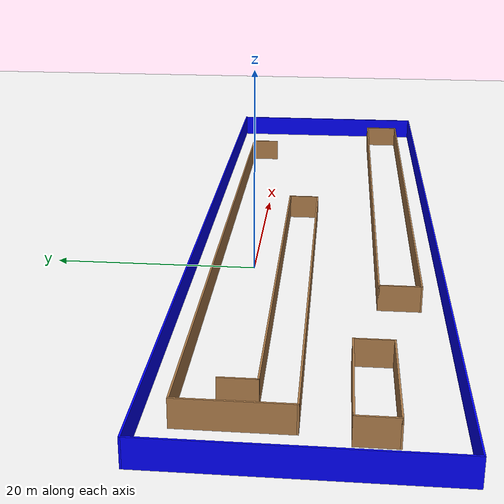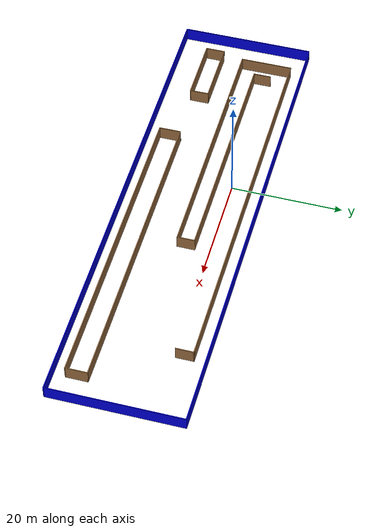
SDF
<sdf version="1.7">
 <world name="custom_world_new">
  <light name="sun" type="directional">
   <pose>0 0 10 0 -0 0</pose>
   <diffuse>0.8 0.8 0.8 1</diffuse>
   <specular>0.2 0.2 0.2 1</specular>
   <attenuation>
    <range>1000</range>
    <constant>0.9</constant>
    <linear>0.01</linear>
    <quadratic>0.001</quadratic>
   </attenuation>
   <direction>-0.5 0.1 -0.9</direction>
   <spot><inner_angle>0</inner_angle><outer_angle>0</outer_angle><falloff>0</falloff></spot>
  </light>
  <model name="ground_plane">
   <static>1</static>
   <link name="link">
    <collision name="collision">
     <geometry><plane><normal>0 0 1</normal><size>100 100</size></plane></geometry>
     <surface>
      <contact><collide_bitmask>65535</collide_bitmask></contact>
      <friction><ode><mu>100</mu><mu2>50</mu2></ode></friction>
     </surface>
    </collision>
    <visual name="visual">
     <cast_shadows>0</cast_shadows>
     <geometry><plane><normal>0 0 1</normal><size>100 100</size></plane></geometry>
     <material><ambient>1 1 1 1</ambient><diffuse>1 1 1 1</diffuse><specular>0.1 0.1 0.1 1</specular></material>
    </visual>
   </link>
  </model>
  <gravity>0 0 -9.8</gravity>
  <magnetic_field>6e-06 2.3e-05 -4.2e-05</magnetic_field>
  <atmosphere type="adiabatic"/>
  <physics type="ode">
   <max_step_size>0.001</max_step_size>
   <real_time_factor>1</real_time_factor>
   <real_time_update_rate>1000</real_time_update_rate>
  </physics>
  <scene><ambient>0.4 0.4 0.4 1</ambient><background>0.7 0.7 0.7 1</background><shadows>1</shadows></scene>
  <spherical_coordinates>
   <surface_model>EARTH_WGS84</surface_model>
   <latitude_deg>0</latitude_deg>
   <longitude_deg>0</longitude_deg>
   <elevation>0</elevation>
   <heading_deg>0</heading_deg>
  </spherical_coordinates>
  <model name="custom_world_gazebo.sdf">
   <pose>8.1049 -6.09134 0 0 -0 0</pose>
   <link name="Wall_0">
    <collision name="Wall_0_Collision">
     <geometry><box><size>86.75 0.15 2.5</size></box></geometry>
     <pose>0 0 1.25 0 -0 0</pose>
    </collision>
    <visual name="Wall_0_Visual">
     <pose>0 0 1.25 0 -0 0</pose>
     <geometry><box><size>86.75 0.15 2.5</size></box></geometry>
     <material><ambient>0 0 1 1</ambient><diffuse>0 0 1 1</diffuse><specular>0.1 0.1 0.1 1</specular></material>
     <meta><layer>0</layer></meta>
    </visual>
    <pose>0 11.925 0 0 -0 0</pose>
   </link>
   <link name="Wall_1">
    <collision name="Wall_1_Collision">
     <geometry><box><size>24 0.15 2.5</size></box></geometry>
     <pose>0 0 1.25 0 -0 0</pose>
    </collision>
    <visual name="Wall_1_Visual">
     <pose>0 0 1.25 0 -0 0</pose>
     <geometry><box><size>24 0.15 2.5</size></box></geometry>
     <material><ambient>0 0 1 1</ambient><diffuse>0 0 1 1</diffuse><specular>0.1 0.1 0.1 1</specular></material>
     <meta><layer>0</layer></meta>
    </visual>
    <pose>43.3 -0 0 0 -0 -1.5708</pose>
   </link>
   <link name="Wall_10">
    <collision name="Wall_10_Collision">
     <geometry><box><size>3.25 0.15 2.5</size></box></geometry>
     <pose>0 0 1.25 0 -0 0</pose>
    </collision>
    <visual name="Wall_10_Visual">
     <pose>0 0 1.25 0 -0 0</pose>
     <geometry><box><size>3.25 0.15 2.5</size></box></geometry>
     <material>
      <script><uri>file://media/materials/scripts/gazebo.material</uri><name>Gazebo/Wood</name></script>
      <ambient>1 1 1 1</ambient>
     </material>
     <meta><layer>0</layer></meta>
    </visual>
    <pose>-34.814 4.94002 0 0 -0 -1.5708</pose>
   </link>
   <link name="Wall_11">
    <collision name="Wall_11_Collision">
     <geometry><box><size>42.25 0.15 2.5</size></box></geometry>
     <pose>0 0 1.25 0 -0 0</pose>
    </collision>
    <visual name="Wall_11_Visual">
     <pose>0 0 1.25 0 -0 0</pose>
     <geometry><box><size>42.25 0.15 2.5</size></box></geometry>
     <material>
      <script><uri>file://media/materials/scripts/gazebo.material</uri><name>Gazebo/Wood</name></script>
      <ambient>1 1 1 1</ambient>
     </material>
     <meta><layer>0</layer></meta>
    </visual>
    <pose>-13.764 3.39002 0 0 -0 0</pose>
   </link>
   <link name="Wall_12">
    <collision name="Wall_12_Collision">
     <geometry><box><size>3.25 0.15 2.5</size></box></geometry>
     <pose>0 0 1.25 0 -0 0</pose>
    </collision>
    <visual name="Wall_12_Visual">
     <pose>0 0 1.25 0 -0 0</pose>
     <geometry><box><size>3.25 0.15 2.5</size></box></geometry>
     <material>
      <script><uri>file://media/materials/scripts/gazebo.material</uri><name>Gazebo/Wood</name></script>
      <ambient>1 1 1 1</ambient>
     </material>
     <meta><layer>0</layer></meta>
    </visual>
    <pose>7.28602 1.84002 0 0 -0 -1.5708</pose>
   </link>
   <link name="Wall_13">
    <collision name="Wall_13_Collision">
     <geometry><box><size>45.5 0.15 2.5</size></box></geometry>
     <pose>0 0 1.25 0 -0 0</pose>
    </collision>
    <visual name="Wall_13_Visual">
     <pose>0 0 1.25 0 -0 0</pose>
     <geometry><box><size>45.5 0.15 2.5</size></box></geometry>
     <material>
      <script><uri>file://media/materials/scripts/gazebo.material</uri><name>Gazebo/Wood</name></script>
      <ambient>1 1 1 1</ambient>
     </material>
     <meta><layer>0</layer></meta>
    </visual>
    <pose>-15.389 0.290017 0 0 -0 3.14159</pose>
   </link>
   <link name="Wall_14">
    <collision name="Wall_14_Collision">
     <geometry><box><size>9.45 0.15 2.5</size></box></geometry>
     <pose>0 0 1.25 0 -0 0</pose>
    </collision>
    <visual name="Wall_14_Visual">
     <pose>0 0 1.25 0 -0 0</pose>
     <geometry><box><size>9.45 0.15 2.5</size></box></geometry>
     <material>
      <script><uri>file://media/materials/scripts/gazebo.material</uri><name>Gazebo/Wood</name></script>
      <ambient>1 1 1 1</ambient>
     </material>
     <meta><layer>0</layer></meta>
    </visual>
    <pose>-38.064 4.94002 0 0 -0 1.5708</pose>
   </link>
   <link name="Wall_16">
    <collision name="Wall_16_Collision">
     <geometry><box><size>55.75 0.15 2.5</size></box></geometry>
     <pose>0 0 1.25 0 -0 0</pose>
    </collision>
    <visual name="Wall_16_Visual">
     <pose>0 0 1.25 0 -0 0</pose>
     <geometry><box><size>55.75 0.15 2.5</size></box></geometry>
     <material>
      <script><uri>file://media/materials/scripts/gazebo.material</uri><name>Gazebo/Wood</name></script>
      <ambient>1 1 1 1</ambient>
     </material>
     <meta><layer>0</layer></meta>
    </visual>
    <pose>10.9012 -5.93112 0 0 -0 0</pose>
   </link>
   <link name="Wall_17">
    <collision name="Wall_17_Collision">
     <geometry><box><size>4 0.15 2.5</size></box></geometry>
     <pose>0 0 1.25 0 -0 0</pose>
    </collision>
    <visual name="Wall_17_Visual">
     <pose>0 0 1.25 0 -0 0</pose>
     <geometry><box><size>4 0.15 2.5</size></box></geometry>
     <material>
      <script><uri>file://media/materials/scripts/gazebo.material</uri><name>Gazebo/Wood</name></script>
      <ambient>1 1 1 1</ambient>
     </material>
     <meta><layer>0</layer></meta>
    </visual>
    <pose>38.7012 -7.85612 0 0 -0 -1.5708</pose>
   </link>
   <link name="Wall_18">
    <collision name="Wall_18_Collision">
     <geometry><box><size>55.75 0.15 2.5</size></box></geometry>
     <pose>0 0 1.25 0 -0 0</pose>
    </collision>
    <visual name="Wall_18_Visual">
     <pose>0 0 1.25 0 -0 0</pose>
     <geometry><box><size>55.75 0.15 2.5</size></box></geometry>
     <material>
      <script><uri>file://media/materials/scripts/gazebo.material</uri><name>Gazebo/Wood</name></script>
      <ambient>1 1 1 1</ambient>
     </material>
     <meta><layer>0</layer></meta>
    </visual>
    <pose>10.9012 -9.78112 0 0 -0 3.14159</pose>
   </link>
   <link name="Wall_19">
    <collision name="Wall_19_Collision">
     <geometry><box><size>4 0.15 2.5</size></box></geometry>
     <pose>0 0 1.25 0 -0 0</pose>
    </collision>
    <visual name="Wall_19_Visual">
     <pose>0 0 1.25 0 -0 0</pose>
     <geometry><box><size>4 0.15 2.5</size></box></geometry>
     <material>
      <script><uri>file://media/materials/scripts/gazebo.material</uri><name>Gazebo/Wood</name></script>
      <ambient>1 1 1 1</ambient>
     </material>
     <meta><layer>0</layer></meta>
    </visual>
    <pose>-16.8988 -7.85612 0 0 -0 1.5708</pose>
   </link>
   <link name="Wall_21">
    <collision name="Wall_21_Collision">
     <geometry><box><size>11.75 0.15 2.5</size></box></geometry>
     <pose>0 0 1.25 0 -0 0</pose>
    </collision>
    <visual name="Wall_21_Visual">
     <pose>0 0 1.25 0 -0 0</pose>
     <geometry><box><size>11.75 0.15 2.5</size></box></geometry>
     <material>
      <script><uri>file://media/materials/scripts/gazebo.material</uri><name>Gazebo/Wood</name></script>
      <ambient>1 1 1 1</ambient>
     </material>
     <meta><layer>0</layer></meta>
    </visual>
    <pose>-33.3699 -3.59172 0 0 -0 0</pose>
   </link>
   <link name="Wall_22">
    <collision name="Wall_22_Collision">
     <geometry><box><size>3.5 0.15 2.5</size></box></geometry>
     <pose>0 0 1.25 0 -0 0</pose>
    </collision>
    <visual name="Wall_22_Visual">
     <pose>0 0 1.25 0 -0 0</pose>
     <geometry><box><size>3.5 0.15 2.5</size></box></geometry>
     <material>
      <script><uri>file://media/materials/scripts/gazebo.material</uri><name>Gazebo/Wood</name></script>
      <ambient>1 1 1 1</ambient>
     </material>
     <meta><layer>0</layer></meta>
    </visual>
    <pose>-27.5699 -5.26672 0 0 -0 -1.5708</pose>
   </link>
   <link name="Wall_23">
    <collision name="Wall_23_Collision">
     <geometry><box><size>11.75 0.15 2.5</size></box></geometry>
     <pose>0 0 1.25 0 -0 0</pose>
    </collision>
    <visual name="Wall_23_Visual">
     <pose>0 0 1.25 0 -0 0</pose>
     <geometry><box><size>11.75 0.15 2.5</size></box></geometry>
     <material>
      <script><uri>file://media/materials/scripts/gazebo.material</uri><name>Gazebo/Wood</name></script>
      <ambient>1 1 1 1</ambient>
     </material>
     <meta><layer>0</layer></meta>
    </visual>
    <pose>-33.3699 -6.94172 0 0 -0 3.14159</pose>
   </link>
   <link name="Wall_24">
    <collision name="Wall_24_Collision">
     <geometry><box><size>3.5 0.15 2.5</size></box></geometry>
     <pose>0 0 1.25 0 -0 0</pose>
    </collision>
    <visual name="Wall_24_Visual">
     <pose>0 0 1.25 0 -0 0</pose>
     <geometry><box><size>3.5 0.15 2.5</size></box></geometry>
     <material>
      <script><uri>file://media/materials/scripts/gazebo.material</uri><name>Gazebo/Wood</name></script>
      <ambient>1 1 1 1</ambient>
     </material>
     <meta><layer>0</layer></meta>
    </visual>
    <pose>-39.1699 -5.26672 0 0 -0 1.5708</pose>
   </link>
   <link name="Wall_4">
    <collision name="Wall_4_Collision">
     <geometry><box><size>24 0.15 2.5</size></box></geometry>
     <pose>0 0 1.25 0 -0 0</pose>
    </collision>
    <visual name="Wall_4_Visual">
     <pose>0 0 1.25 0 -0 0</pose>
     <geometry><box><size>24 0.15 2.5</size></box></geometry>
     <material><ambient>0 0 1 1</ambient><diffuse>0 0 1 1</diffuse><specular>0.1 0.1 0.1 1</specular></material>
     <meta><layer>0</layer></meta>
    </visual>
    <pose>-43.3 -0 0 0 -0 -1.5708</pose>
   </link>
   <link name="Wall_5">
    <collision name="Wall_5_Collision">
     <geometry><box><size>86.75 0.15 2.5</size></box></geometry>
     <pose>0 0 1.25 0 -0 0</pose>
    </collision>
    <visual name="Wall_5_Visual">
     <pose>0 0 1.25 0 -0 0</pose>
     <geometry><box><size>86.75 0.15 2.5</size></box></geometry>
     <material><ambient>0 0 1 1</ambient><diffuse>0 0 1 1</diffuse><specular>0.1 0.1 0.1 1</specular></material>
     <meta><layer>0</layer></meta>
    </visual>
    <pose>0 -11.925 0 0 -0 0</pose>
   </link>
   <link name="Wall_7">
    <collision name="Wall_7_Collision">
     <geometry><box><size>68.5 0.15 2.5</size></box></geometry>
     <pose>0 0 1.25 0 -0 0</pose>
    </collision>
    <visual name="Wall_7_Visual">
     <pose>0 0 1.25 0 -0 0</pose>
     <geometry><box><size>68.5 0.15 2.5</size></box></geometry>
     <material>
      <script><uri>file://media/materials/scripts/gazebo.material</uri><name>Gazebo/Wood</name></script>
      <ambient>1 1 1 1</ambient>
     </material>
     <meta><layer>0</layer></meta>
    </visual>
    <pose>-3.88898 9.59002 0 0 -0 0</pose>
   </link>
   <link name="Wall_8">
    <collision name="Wall_8_Collision">
     <geometry><box><size>3.25 0.15 2.5</size></box></geometry>
     <pose>0 0 1.25 0 -0 0</pose>
    </collision>
    <visual name="Wall_8_Visual">
     <pose>0 0 1.25 0 -0 0</pose>
     <geometry><box><size>3.25 0.15 2.5</size></box></geometry>
     <material>
      <script><uri>file://media/materials/scripts/gazebo.material</uri><name>Gazebo/Wood</name></script>
      <ambient>1 1 1 1</ambient>
     </material>
     <meta><layer>0</layer></meta>
    </visual>
    <pose>30.286 8.04002 0 0 -0 -1.5708</pose>
   </link>
   <static>1</static>
  </model>
 </world>
</sdf>
